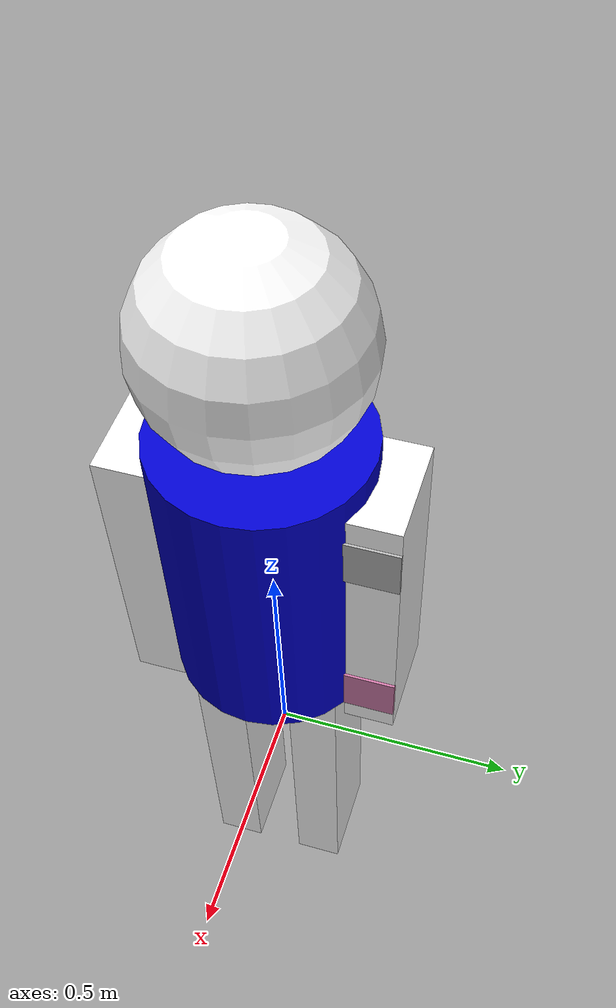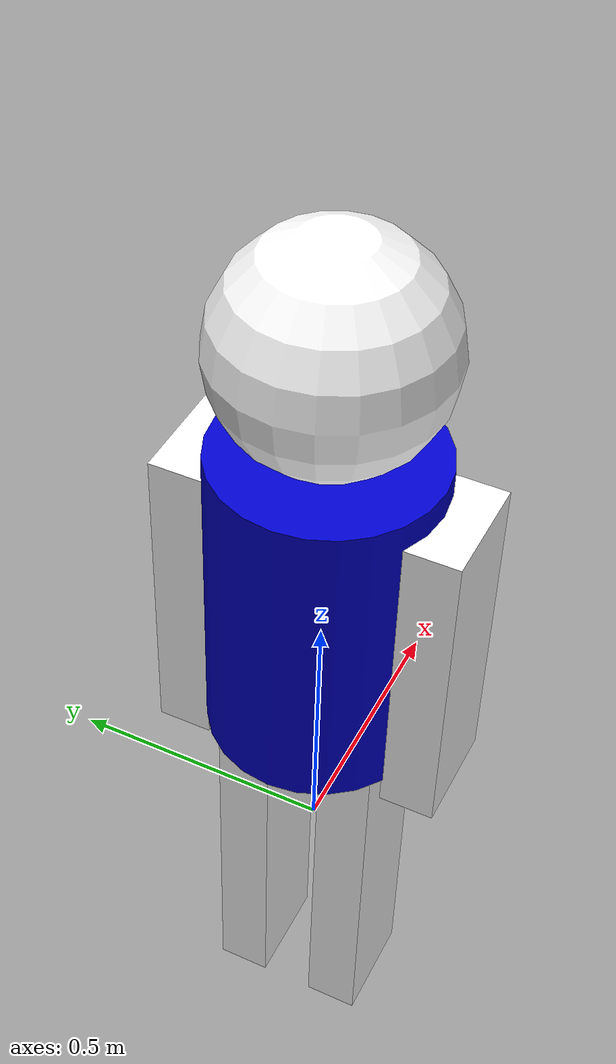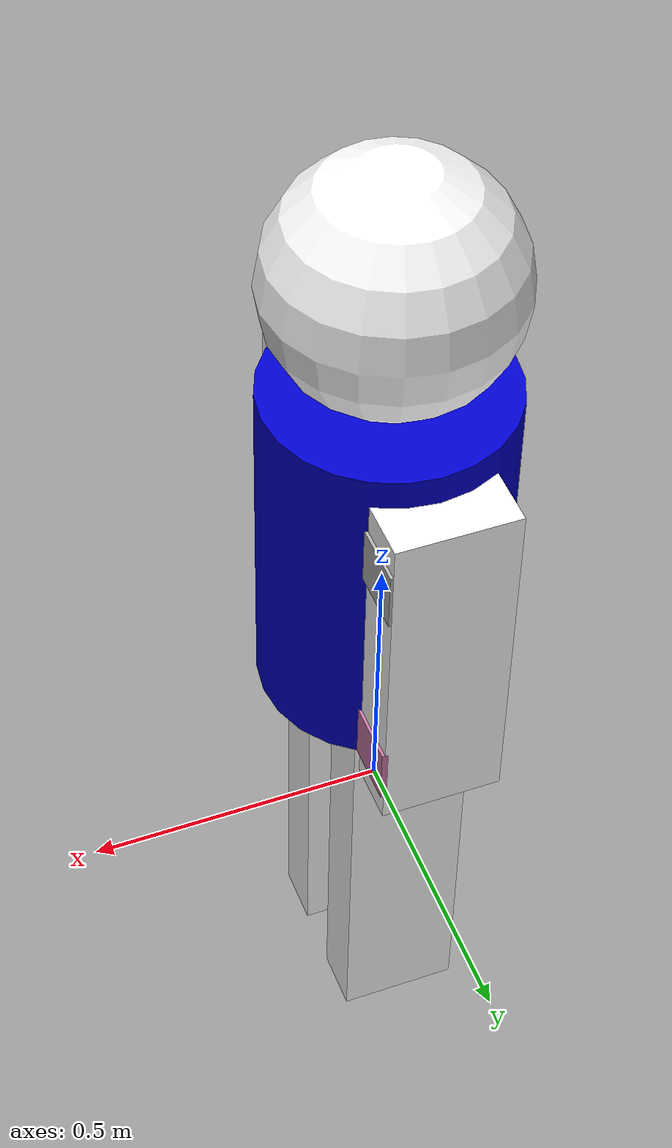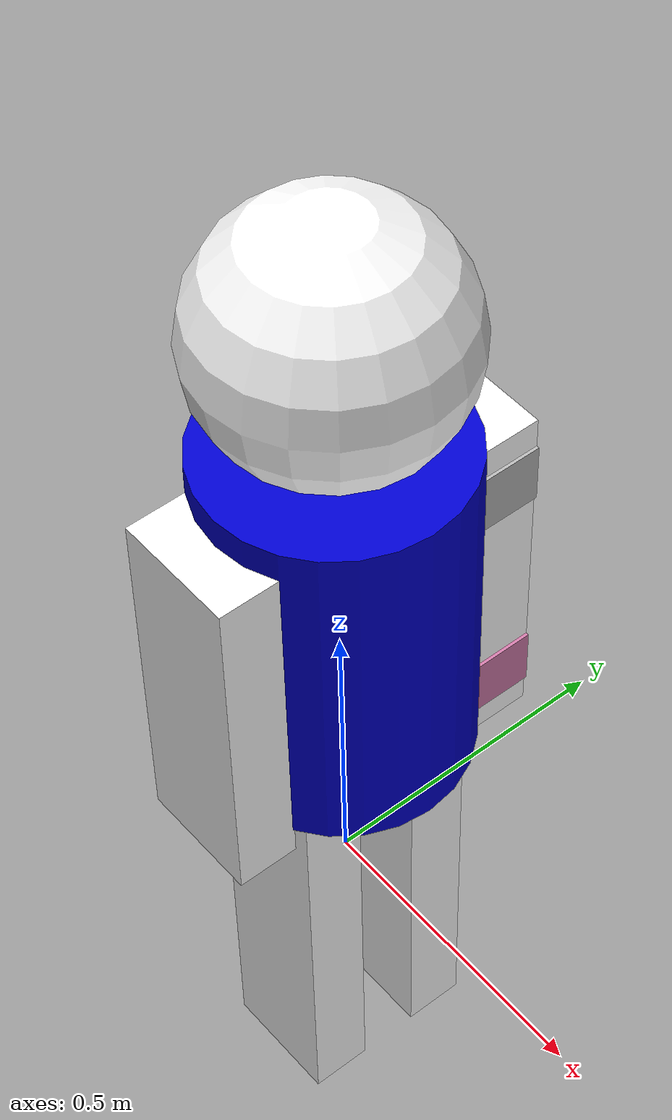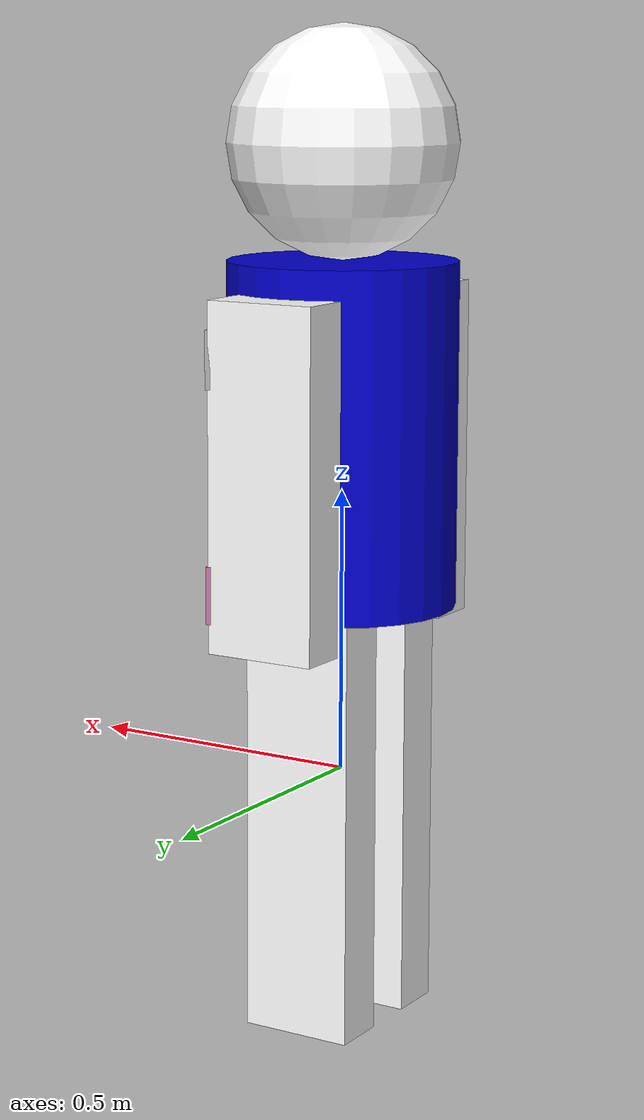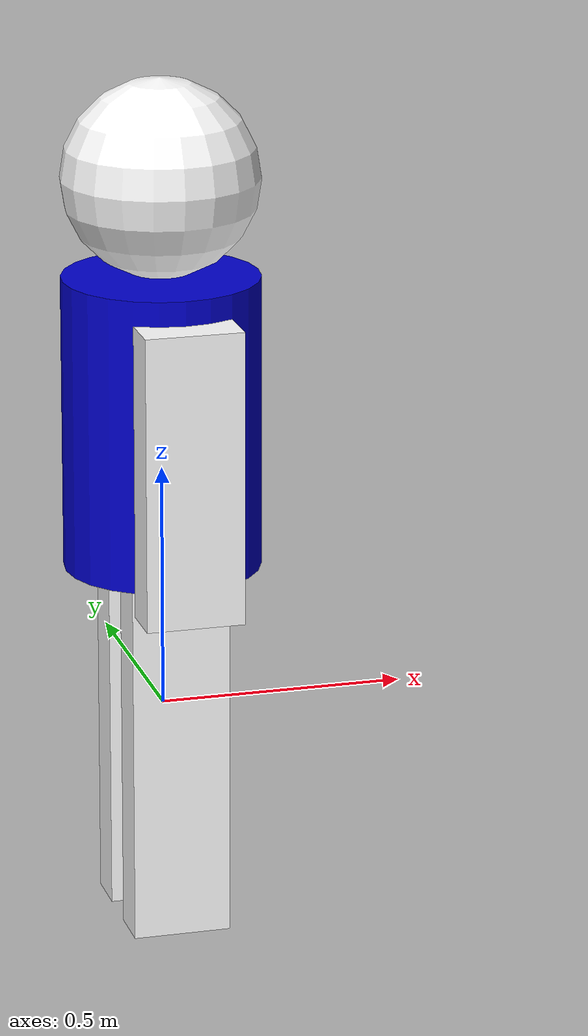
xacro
<?xml version="1.0"?>
<robot name="gazebo1" xmlns:xacro="http://ros.org/wiki/xacro">

  <xacro:property name="width" value="0.2" />
  <xacro:property name="leglen" value="0.6" />
  <xacro:property name="polelen" value="0.2" />
  <xacro:property name="bodylen" value="0.6" />
  <xacro:property name="baselen" value="0.4" />
  <xacro:property name="wheeldiam" value="0.07" />
  <xacro:property name="pi" value="3.1415" />

  <material name="blue">
    <color rgba="0 0 0.8 1"/>
  </material>

  <material name="black">
    <color rgba="0 0 0 1"/>
  </material>

  <material name="white">
    <color rgba="1 1 1 1"/>
  </material>

  <xacro:macro name="default_inertial" params="mass">
    <inertial>
      <mass value="${mass}" />
      <inertia ixx="1.0" ixy="0.0" ixz="0.0" iyy="1.0" iyz="0.0" izz="1.0" />
    </inertial>
  </xacro:macro>

  <link name="base_link">
    <visual>
      <geometry>
        <cylinder radius="${width}" length="${bodylen}"/>
      </geometry>
      <origin xyz="0 0 0.6"/>
      <material name="blue"/>
    </visual>
    <collision>
      <geometry>
        <cylinder radius="${width}" length="${bodylen}"/>
      </geometry>
    </collision>
    <xacro:default_inertial mass="10"/>
  </link>

  <xacro:macro name="arm" params="prefix reflect">
    <link name="${prefix}_arm">
      <visual>
        <geometry>
          <box size="${leglen} 0.1 0.2"/>
        </geometry>
        <origin xyz="0 0 -${leglen/2}" rpy="0 ${pi/2} 0"/>
        <material name="white"/>
      </visual>
      <collision>
        <geometry>
          <box size="${leglen/2} 0.1 0.2"/>
        </geometry>
        <origin xyz="0 0 -${leglen}" rpy="0 ${pi/2} 0"/>
      </collision>
      <xacro:default_inertial mass="10"/>
    </link>

    <joint name="base_to_${prefix}_arm" type="revolute">
      <axis xyz="1 0 0"/>
      <limit effort="50.0" lower="0.0" upper="${reflect *3}" velocity="1"/>
      <origin rpy="0 0 0" xyz="0 ${reflect*(width+.02)} 0.85" />
      <parent link="base_link"/>
      <child link="${prefix}_arm"/>
    </joint>

  </xacro:macro>
  <xacro:arm prefix="right" reflect="-1" />
  <xacro:arm prefix="left" reflect="1" />

    <xacro:macro name="leg" params="prefix reflect">
    <link name="${prefix}_leg">
      <visual>
        <geometry>
          <box size="0.8 0.1 0.2"/>
        </geometry>
        <origin xyz="0 0 -${leglen/2}" rpy="0 ${pi/2} 0"/>
        <material name="white"/>
      </visual>
      <collision>
        <geometry>
          <box size="0.8 0.1 0.2"/>
        </geometry>
        <origin xyz="0 0 -${leglen/2}" rpy="0 ${pi/2} 0"/>
      </collision>
      <xacro:default_inertial mass="10"/>
    </link>

    <joint name="base_to_${prefix}_leg" type="fixed">
      <parent link="base_link"/>
      <child link="${prefix}_leg"/>
      <origin xyz="0 ${reflect*0.1} 0.25" />
    </joint>

  </xacro:macro>
  <xacro:leg prefix="right" reflect="-1" />
  <xacro:leg prefix="left" reflect="1" />

  <link name="head">
    <visual>
      <geometry>
        <sphere radius="${width}"/>
      </geometry>
      <material name="white"/>
    </visual>
    <collision>
      <geometry>
        <sphere radius="${width}"/>
      </geometry>
    </collision>
    <xacro:default_inertial mass="2"/>
  </link>

  <joint name="head_swivel" type="continuous">
    <parent link="base_link"/>
    <child link="head"/>
    <axis xyz="0 0 1"/>
    <origin xyz="0 0 1.1"/>
  </joint>

  <link name="aruco1">
    <visual>
      <origin rpy="0 ${pi/2} 0" xyz="0.1 0 -0.5"/>
      <geometry>
        <mesh filename="package://arucobaxter_gazebo/meshes/arucotag1.dae"/>
      </geometry>
    </visual>
  </link>

  <joint name="aruco1_joint" type="fixed">
    <parent link="left_arm"/>
    <child link="aruco1"/>
  </joint>

   <link name="aruco2">
    <visual>
      <origin rpy="0 ${pi/2} 0" xyz="0.1 0 -0.1"/>
      <geometry>
        <mesh filename="package://arucobaxter_gazebo/meshes/arucotag1.dae"/>
      </geometry>
    </visual>
  </link>

  <joint name="aruco2_joint" type="fixed">
    <parent link="left_arm"/>
    <child link="aruco2"/>
  </joint>

  <!-- Gazebo plugin for ROS Control -->
  <gazebo>
    <plugin name="gazebo_ros_control" filename="libgazebo_ros_control.so">
      <robotNamespace>/</robotNamespace>
    </plugin>
  </gazebo>

</robot>
